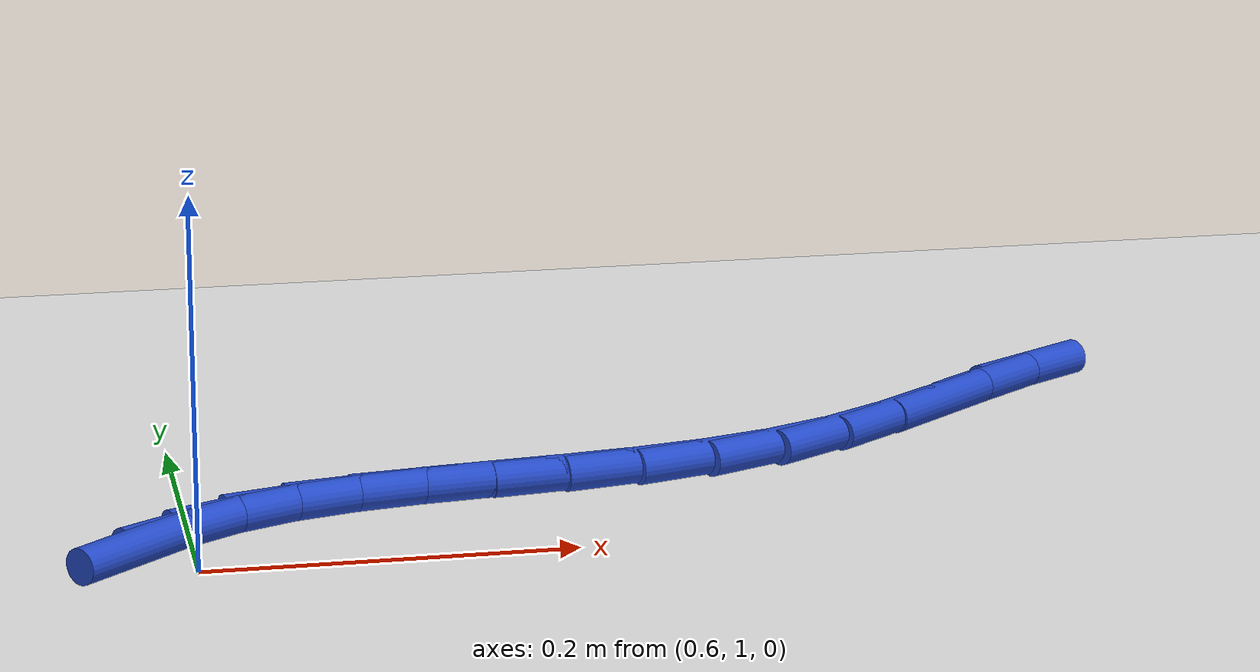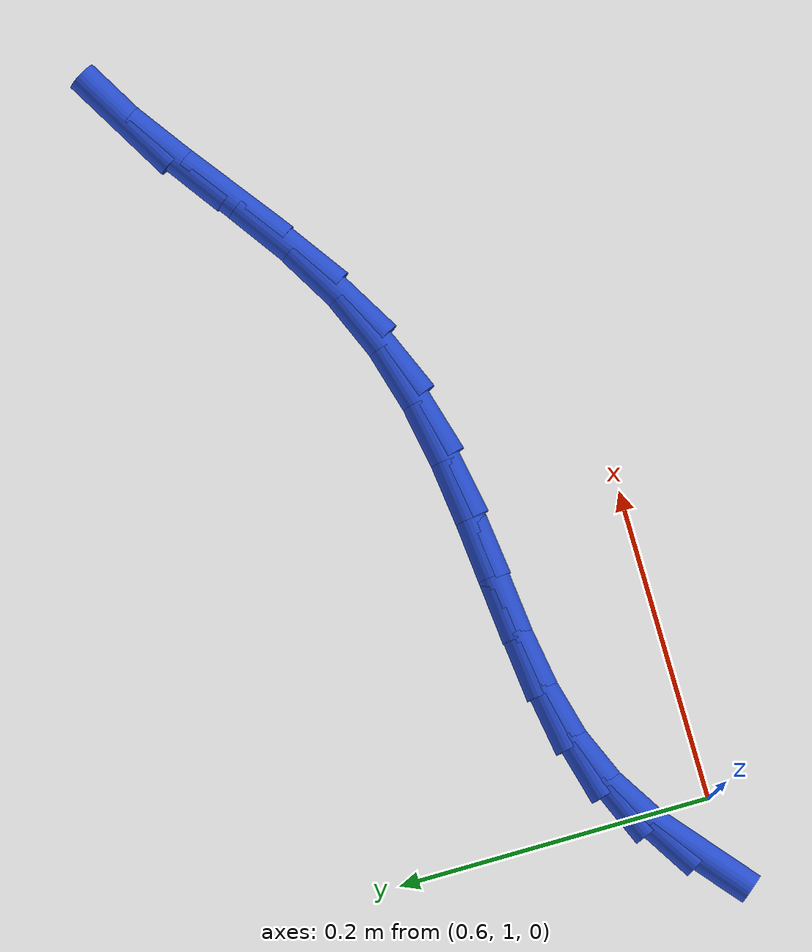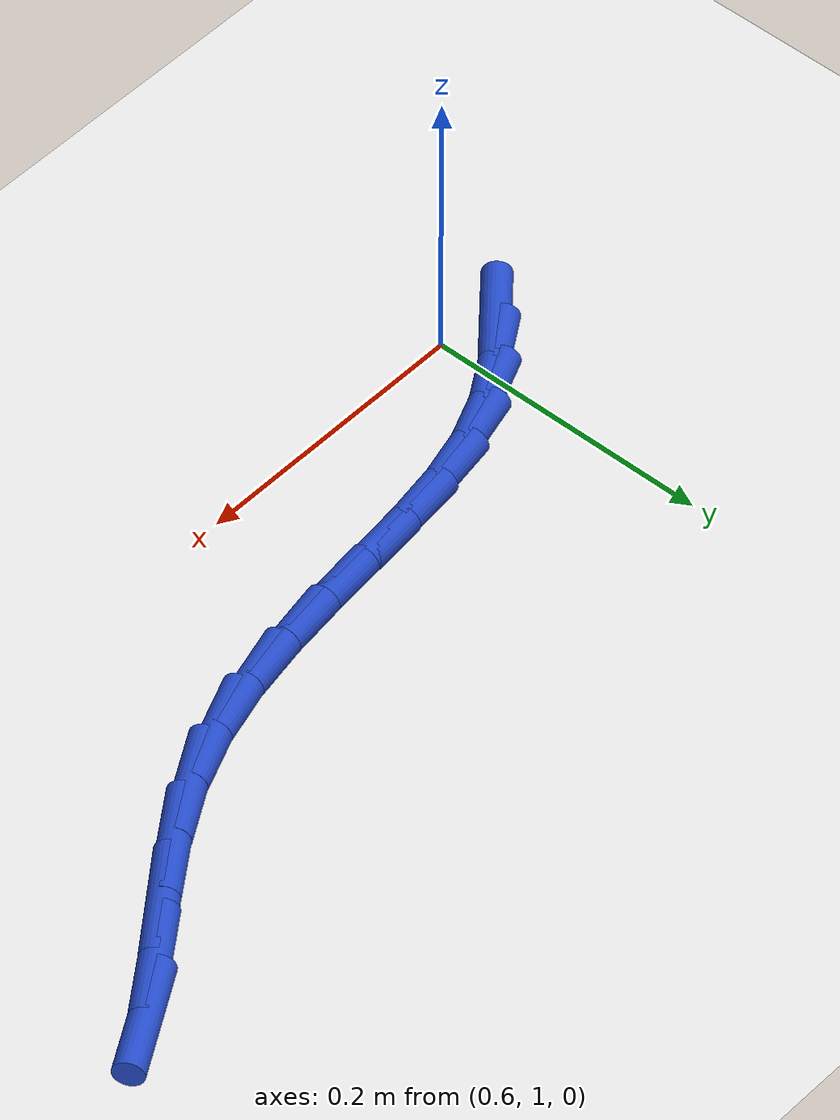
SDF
<sdf version="1.6">
 <world name="default">
  <model name="ground_plane">
   <static>1</static>
   <link name="link">
    <collision name="collision">
     <geometry><plane><normal>0 0 1</normal><size>100 100</size></plane></geometry>
     <surface><friction><ode><mu>100</mu><mu2>50</mu2></ode></friction></surface>
    </collision>
    <visual name="visual">
     <cast_shadows>0</cast_shadows>
     <geometry><plane><normal>0 0 1</normal><size>100 100</size></plane></geometry>
     <material>
      <script><uri>file://media/materials/scripts/gazebo.material</uri><name>Gazebo/WhiteGlow</name></script>
     </material>
    </visual>
   </link>
  </model>
  <model name="line">
   <link name="link_30">
    <pose>0.5689347290441951 1.0163583285207363 0.01 0 1.57 0.7005167500098161</pose>
    <collision name="collision">
     <geometry><cylinder><radius>0.01</radius><length>0.08</length></cylinder></geometry>
    </collision>
    <visual name="visual">
     <material>
      <script><name>Gazebo/Blue</name><uri>file://media/materials/scripts/gazebo.material</uri></script>
     </material>
     <geometry><cylinder><radius>0.01</radius><length>0.08</length></cylinder></geometry>
    </visual>
   </link>
   <link name="link_31">
    <pose>0.5960923387793435 1.0392568679862462 0.01 0 1.57 0.5627940387736703</pose>
    <collision name="collision">
     <geometry><cylinder><radius>0.01</radius><length>0.08</length></cylinder></geometry>
    </collision>
    <visual name="visual">
     <material>
      <script><name>Gazebo/Blue</name><uri>file://media/materials/scripts/gazebo.material</uri></script>
     </material>
     <geometry><cylinder><radius>0.01</radius><length>0.08</length></cylinder></geometry>
    </visual>
   </link>
   <link name="link_32">
    <pose>0.6255328221388703 1.0578293573163047 0.01 0 1.57 0.4038892538528162</pose>
    <collision name="collision">
     <geometry><cylinder><radius>0.01</radius><length>0.08</length></cylinder></geometry>
    </collision>
    <visual name="visual">
     <material>
      <script><name>Gazebo/Blue</name><uri>file://media/materials/scripts/gazebo.material</uri></script>
     </material>
     <geometry><cylinder><radius>0.01</radius><length>0.08</length></cylinder></geometry>
    </visual>
   </link>
   <link name="link_33">
    <pose>0.6575995567666834 1.0715342072497898 0.01 0 1.57 0.2583672371982367</pose>
    <collision name="collision">
     <geometry><cylinder><radius>0.01</radius><length>0.08</length></cylinder></geometry>
    </collision>
    <visual name="visual">
     <material>
      <script><name>Gazebo/Blue</name><uri>file://media/materials/scripts/gazebo.material</uri></script>
     </material>
     <geometry><cylinder><radius>0.01</radius><length>0.08</length></cylinder></geometry>
    </visual>
   </link>
   <link name="link_34">
    <pose>0.6922657802741444 1.0806955884523786 0.01 0 1.57 0.16094464935645597</pose>
    <collision name="collision">
     <geometry><cylinder><radius>0.01</radius><length>0.08</length></cylinder></geometry>
    </collision>
    <visual name="visual">
     <material>
      <script><name>Gazebo/Blue</name><uri>file://media/materials/scripts/gazebo.material</uri></script>
     </material>
     <geometry><cylinder><radius>0.01</radius><length>0.08</length></cylinder></geometry>
    </visual>
   </link>
   <link name="link_35">
    <pose>0.7290635222869535 1.0866696599178962 0.01 0 1.57 0.10892706521384078</pose>
    <collision name="collision">
     <geometry><cylinder><radius>0.01</radius><length>0.08</length></cylinder></geometry>
    </collision>
    <visual name="visual">
     <material>
      <script><name>Gazebo/Blue</name><uri>file://media/materials/scripts/gazebo.material</uri></script>
     </material>
     <geometry><cylinder><radius>0.01</radius><length>0.08</length></cylinder></geometry>
    </visual>
   </link>
   <link name="link_36">
    <pose>0.7674989979613372 1.0908729608510006 0.01 0 1.57 0.09694440888248296</pose>
    <collision name="collision">
     <geometry><cylinder><radius>0.01</radius><length>0.08</length></cylinder></geometry>
    </collision>
    <visual name="visual">
     <material>
      <script><name>Gazebo/Blue</name><uri>file://media/materials/scripts/gazebo.material</uri></script>
     </material>
     <geometry><cylinder><radius>0.01</radius><length>0.08</length></cylinder></geometry>
    </visual>
   </link>
   <link name="link_37">
    <pose>0.8070784224535215 1.0947220304563503 0.01 0 1.57 0.12148254916971234</pose>
    <collision name="collision">
     <geometry><cylinder><radius>0.01</radius><length>0.08</length></cylinder></geometry>
    </collision>
    <visual name="visual">
     <material>
      <script><name>Gazebo/Blue</name><uri>file://media/materials/scripts/gazebo.material</uri></script>
     </material>
     <geometry><cylinder><radius>0.01</radius><length>0.08</length></cylinder></geometry>
    </visual>
   </link>
   <link name="link_38">
    <pose>0.8473080109197331 1.0996334079386034 0.01 0 1.57 0.1809874980426755</pose>
    <collision name="collision">
     <geometry><cylinder><radius>0.01</radius><length>0.08</length></cylinder></geometry>
    </collision>
    <visual name="visual">
     <material>
      <script><name>Gazebo/Blue</name><uri>file://media/materials/scripts/gazebo.material</uri></script>
     </material>
     <geometry><cylinder><radius>0.01</radius><length>0.08</length></cylinder></geometry>
    </visual>
   </link>
   <link name="link_39">
    <pose>0.8876939785161979 1.107023632502418 0.01 0 1.57 0.2746753520392098</pose>
    <collision name="collision">
     <geometry><cylinder><radius>0.01</radius><length>0.08</length></cylinder></geometry>
    </collision>
    <visual name="visual">
     <material>
      <script><name>Gazebo/Blue</name><uri>file://media/materials/scripts/gazebo.material</uri></script>
     </material>
     <geometry><cylinder><radius>0.01</radius><length>0.08</length></cylinder></geometry>
    </visual>
   </link>
   <link name="link_40">
    <pose>0.9277425403991421 1.118309243352452 0.01 0 1.57 0.4003471819447287</pose>
    <collision name="collision">
     <geometry><cylinder><radius>0.01</radius><length>0.08</length></cylinder></geometry>
    </collision>
    <visual name="visual">
     <material>
      <script><name>Gazebo/Blue</name><uri>file://media/materials/scripts/gazebo.material</uri></script>
     </material>
     <geometry><cylinder><radius>0.01</radius><length>0.08</length></cylinder></geometry>
    </visual>
   </link>
   <link name="link_41">
    <pose>0.9669599629667047 1.1349061554492776 0.01 0 1.57 0.532530980872771</pose>
    <collision name="collision">
     <geometry><cylinder><radius>0.01</radius><length>0.08</length></cylinder></geometry>
    </collision>
    <visual name="visual">
     <material>
      <script><name>Gazebo/Blue</name><uri>file://media/materials/scripts/gazebo.material</uri></script>
     </material>
     <geometry><cylinder><radius>0.01</radius><length>0.08</length></cylinder></geometry>
    </visual>
   </link>
   <link name="link_42">
    <pose>1.0049302801953897 1.1572828961802586 0.01 0 1.57 0.6142302126609227</pose>
    <collision name="collision">
     <geometry><cylinder><radius>0.01</radius><length>0.08</length></cylinder></geometry>
    </collision>
    <visual name="visual">
     <material>
      <script><name>Gazebo/Blue</name><uri>file://media/materials/scripts/gazebo.material</uri></script>
     </material>
     <geometry><cylinder><radius>0.01</radius><length>0.08</length></cylinder></geometry>
    </visual>
   </link>
   <link name="link_43">
    <pose>1.0414718600117672 1.1830532676483139 0.01 0 1.57 0.6437002070872572</pose>
    <collision name="collision">
     <geometry><cylinder><radius>0.01</radius><length>0.08</length></cylinder></geometry>
    </collision>
    <visual name="visual">
     <material>
      <script><name>Gazebo/Blue</name><uri>file://media/materials/scripts/gazebo.material</uri></script>
     </material>
     <geometry><cylinder><radius>0.01</radius><length>0.08</length></cylinder></geometry>
    </visual>
   </link>
   <link name="link_44">
    <pose>1.0764470311765433 1.2092955281109161 0.01 0 1.57 0.6207934460507247</pose>
    <collision name="collision">
     <geometry><cylinder><radius>0.01</radius><length>0.08</length></cylinder></geometry>
    </collision>
    <visual name="visual">
     <material>
      <script><name>Gazebo/Blue</name><uri>file://media/materials/scripts/gazebo.material</uri></script>
     </material>
     <geometry><cylinder><radius>0.01</radius><length>0.08</length></cylinder></geometry>
    </visual>
   </link>
   <link name="link_45">
    <pose>1.1097181224504251 1.233087935825537 0.01 0 1.57 0.530138034267043</pose>
    <collision name="collision">
     <geometry><cylinder><radius>0.01</radius><length>0.08</length></cylinder></geometry>
    </collision>
    <visual name="visual">
     <material>
      <script><name>Gazebo/Blue</name><uri>file://media/materials/scripts/gazebo.material</uri></script>
     </material>
     <geometry><cylinder><radius>0.01</radius><length>0.08</length></cylinder></geometry>
    </visual>
   </link>
  </model>
 </world>
</sdf>
